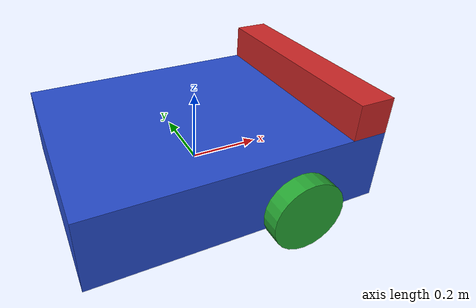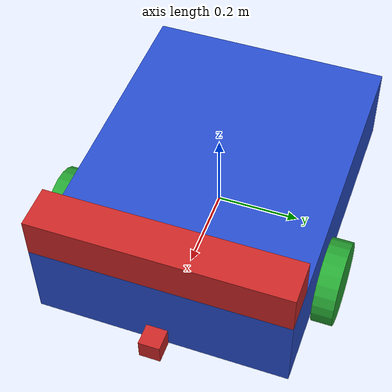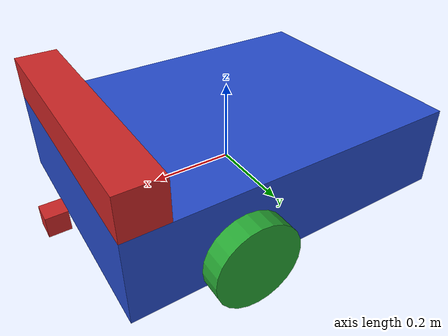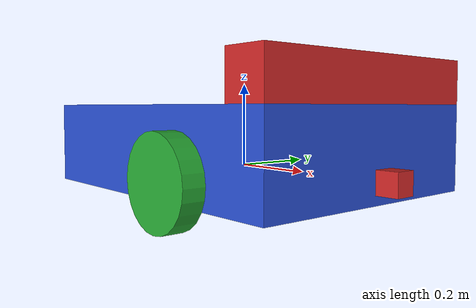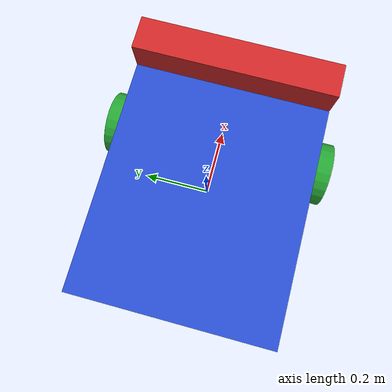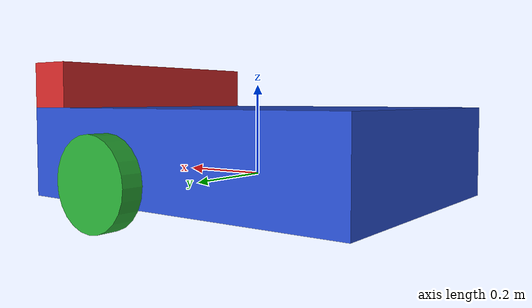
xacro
<?xml version='1.0'?>

<robot name="trixy" xmlns:xacro="http://www.ros.org/wiki/xacro">

  <xacro:include filename="$(find trixy)/urdf/trixy.gazebo" />

  <gazebo reference="left_wheel">
    <material>Gazebo/Green</material>
  </gazebo>

  <gazebo reference="right_wheel">
    <material>Gazebo/Green</material>
  </gazebo>

  <gazebo reference="camera">
    <material>Gazebo/Red</material>
  </gazebo>

  <gazebo reference="chassis">
    <material>Gazebo/Blue</material>
  </gazebo>

    <gazebo reference="banda">
    <material>Gazebo/Red</material>
  </gazebo>

  <link name="robot_footprint"></link>

  <joint name="robot_footprint_joint" type="fixed">
    <origin xyz="0 0 0" rpy="0 0 0" />
    <parent link="robot_footprint"/>
    <child link="chassis" />
  </joint>

<joint name="jbanda" type="prismatic">
    <parent link="chassis"/>
    <child link="banda"/>
    <limit effort="1000.0" lower="-0.8" upper="0" velocity="0.5"/>
    <origin rpy="0 0 0" xyz=".35 0 0.2"/>
  </joint>

<transmission name="tran">
    <type>transmission_interface/SimpleTransmission</type>
    <joint name="jbanda">
      <hardwareInterface>hardware_interface/EffortJointInterface</hardwareInterface>
    </joint>
    <actuator name="motor">
      <hardwareInterface>hardware_interface/EffortJointInterface</hardwareInterface>
      <mechanicalReduction>1</mechanicalReduction><!-- This tag does not any change in simulation -->
    </actuator>
  </transmission>

  <joint name="camera_joint" type="fixed">
    <origin xyz="0.44 0 0" rpy="0 0 0" />
    <parent link="chassis"/>
    <child link="camera" />
    <axis xyz="0 1 0"/>
  </joint>

  <joint type="continuous" name="left_wheel_hinge">
    <origin xyz=".15 0.33 0" rpy="0 0 0" />
    <parent link="chassis"/>
    <child link="left_wheel" />
    <axis xyz="0 1 0" rpy="0 0 0" />
    <limit effort="10000" velocity="1000" />
    <dynamics damping="1.0" friction="1.0" />
  </joint>

  <joint type="continuous" name="right_wheel_hinge">
    <origin xyz=".15 -0.33 0" rpy="0 0 0" />
    <parent link="chassis"/>
    <child link="right_wheel" />
    <axis xyz="0 1 0" rpy="0 0 0" />
    <limit effort="10000" velocity="1000" />
    <dynamics damping="1.0" friction="1.0" />
  </joint>

<link name="camera">
    <inertial>
      <mass value="0.1"/>
      <origin xyz="0 0 0" rpy="0 0 0"/>
      <inertia
        ixx="1e-6" ixy="0.0" ixz="0.0"
        iyy="1e-6" iyz="0.0"
        izz="1e-6"
      />
    </inertial>

    <collision>
      <origin xyz="0 0 0" rpy="0 0 0"/>
      <geometry>
        <box size="0.05 0.05 0.05"/>
      </geometry>
    </collision>

    <visual>
      <origin xyz="0 0 0" rpy="0 0 0"/>
      <geometry>
        <box size="0.05 0.05 0.05"/>
      </geometry>
    </visual>

  </link>

  <link name="banda">
  <inertial>
  <mass value="5"/>
  <origin xyz="0 0 0" rpy="0 0 0"/>
      <inertia
        ixx=".1" ixy="0.0" ixz="0.0"
        iyy=".1" iyz="0.0"
        izz=".1"
      />
    </inertial>

    <collision>
      <origin xyz="0 0 0" rpy="0 0 0"/>
      <geometry>
        <box size="0.09 0.58 0.09"/>
      </geometry>
    </collision>
		<visual>
		    <origin xyz="0 0 0" rpy="0 0 0"/>
			<geometry>
				<box size="0.1 0.60 0.1"/>
			</geometry>

		</visual>
	</link>

  <link name="left_wheel">
    <inertial>
      <mass value="5"/>
      <origin xyz="0 0 0" rpy="0 1.5707 1.5707"/>
      <inertia
        ixx="0.1" ixy="0.0" ixz="0.0"
        iyy="0.1" iyz="0.0"
        izz="0.1"
      />
    </inertial>

    <collision>
      <origin xyz="0 0 0" rpy="0 1.5707 1.5707"/>
      <geometry>
        <cylinder radius="0.1" length="0.05"/>
      </geometry>
    </collision>

    <visual>
      <origin xyz="0 0 0" rpy="0 1.5707 1.5707"/>
      <geometry>
        <cylinder radius="0.1" length="0.05"/>
      </geometry>
    </visual>

  </link>

  <link name="right_wheel">
    <inertial>
      <mass value="5"/>
      <origin xyz="0 0 0" rpy="0 1.5707 1.5707"/>
      <inertia
        ixx="0.1" ixy="0.0" ixz="0.0"
        iyy="0.1" iyz="0.0"
        izz="0.1"
      />
    </inertial>

    <collision>
      <origin xyz="0 0 0" rpy="0 1.5707 1.5707"/>
      <geometry>
        <cylinder radius="0.1" length="0.05"/>
      </geometry>
    </collision>

    <visual>
      <origin xyz="0 0 0" rpy="0 1.5707 1.5707"/>
      <geometry>
        <cylinder radius="0.1" length="0.05"/>
      </geometry>
    </visual>

  </link>

  <link name='chassis'>
    <pose>0 0 0.1 0 0 0</pose>

    <inertial>
      <mass value="15.0"/>
      <origin xyz="0.0 0 0" rpy=" 0 0 0"/>
      <inertia
          ixx="0.1" ixy="0" ixz="0"
          iyy="0.1" iyz="0"
          izz="0.1"
      />
    </inertial>

    <collision name='collision'>
      <origin xyz="0 0 0.05" rpy=" 0 0 0"/>
      <geometry>
        <box size="0.8 0.6 0.2"/>
      </geometry>
    </collision>

    <visual name='chassis_visual'>
      <origin xyz="0 0 0.05" rpy=" 0 0 0"/>
      <geometry>
       <box size="0.8 0.6 0.2"/>
      </geometry>
    </visual>

    <collision name='back_caster_collision'>
      <origin xyz="-0.15 0 -0.05" rpy=" 0 0 0"/>
      <geometry>
        <sphere radius="0.0499"/>
      </geometry>
    </collision>

    <visual name='back_caster_visual'>
      <origin xyz="-0.15 0 -0.05" rpy=" 0 0 0"/>
      <geometry>
        <sphere radius="0.05"/>
      </geometry>
    </visual>

    <collision name='front_caster_collision'>
      <origin xyz="0.15 0 -0.05" rpy=" 0 0 0"/>
      <geometry>
        <sphere radius="0.0499"/>
      </geometry>
    </collision>

    <visual name='front_caster_visual'>
      <origin xyz="0.15 0 -0.05" rpy=" 0 0 0"/>
      <geometry>
        <sphere radius="0.05"/>
      </geometry>
    </visual>

  </link>

</robot>
